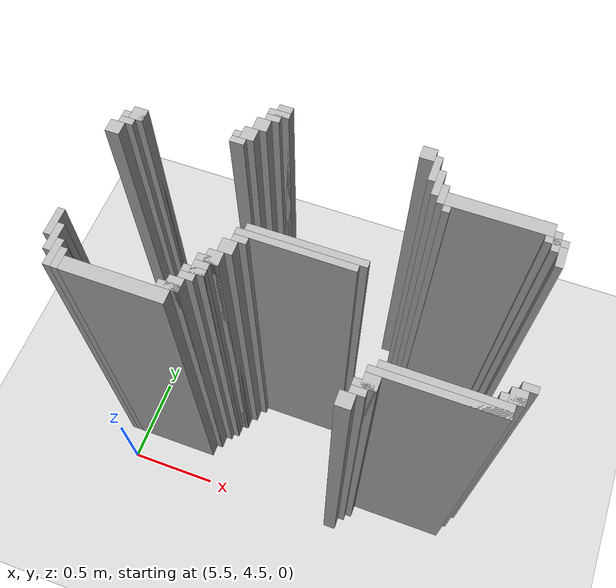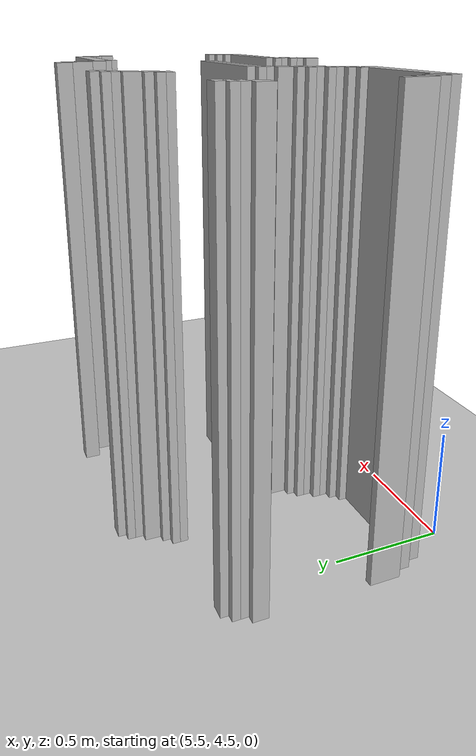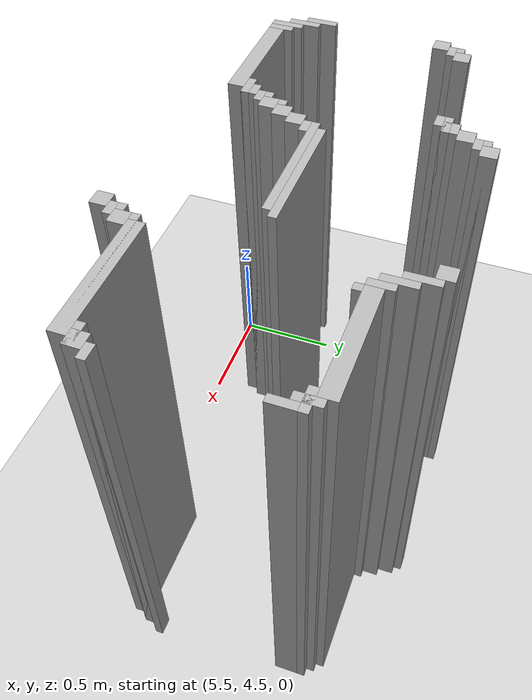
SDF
<sdf version="1.6">
 <world name="slam_world">
  <model name="ground_plane">
   <static>true</static>
   <link name="link">
    <collision name="collision">
     <geometry><plane><normal>0 0 1</normal><size>100 100</size></plane></geometry>
    </collision>
    <visual name="visual">
     <geometry><plane><normal>0 0 1</normal><size>100 100</size></plane></geometry>
     <material>
      <ambient>0.8 0.8 0.8 1</ambient>
      <diffuse>0.8 0.8 0.8 1</diffuse>
      <specular>0.8 0.8 0.8 1</specular>
     </material>
    </visual>
   </link>
  </model>
  <model name="wall_3876">
   <static>true</static>
   <pose>6.05568445475638 5.7772621809744775 1.0 0 0 0</pose>
   <link name="link">
    <collision name="collision">
     <geometry><box><size>0.06960556844547564 0.06960556844547564 2.0</size></box></geometry>
    </collision>
    <visual name="visual">
     <geometry><box><size>0.06960556844547564 0.06960556844547564 2.0</size></box></geometry>
     <material><ambient>0.5 0.5 0.5 1</ambient><diffuse>0.7 0.7 0.7 1</diffuse></material>
    </visual>
   </link>
  </model>
  <model name="wall_3877">
   <static>true</static>
   <pose>6.751740139211137 5.7772621809744775 1.0 0 0 0</pose>
   <link name="link">
    <collision name="collision">
     <geometry><box><size>0.06960556844547564 0.06960556844547564 2.0</size></box></geometry>
    </collision>
    <visual name="visual">
     <geometry><box><size>0.06960556844547564 0.06960556844547564 2.0</size></box></geometry>
     <material><ambient>0.5 0.5 0.5 1</ambient><diffuse>0.7 0.7 0.7 1</diffuse></material>
    </visual>
   </link>
  </model>
  <model name="wall_3889">
   <static>true</static>
   <pose>6.038283062645012 5.759860788863109 1.0 0 0 0</pose>
   <link name="link">
    <collision name="collision">
     <geometry><box><size>0.10440835266821345 0.03480278422273782 2.0</size></box></geometry>
    </collision>
    <visual name="visual">
     <geometry><box><size>0.10440835266821345 0.03480278422273782 2.0</size></box></geometry>
     <material><ambient>0.5 0.5 0.5 1</ambient><diffuse>0.7 0.7 0.7 1</diffuse></material>
    </visual>
   </link>
  </model>
  <model name="wall_3890">
   <static>true</static>
   <pose>6.803944315545244 5.707656612529002 1.0 0 0 0</pose>
   <link name="link">
    <collision name="collision">
     <geometry><box><size>0.03480278422273782 0.13921113689095127 2.0</size></box></geometry>
    </collision>
    <visual name="visual">
     <geometry><box><size>0.03480278422273782 0.13921113689095127 2.0</size></box></geometry>
     <material><ambient>0.5 0.5 0.5 1</ambient><diffuse>0.7 0.7 0.7 1</diffuse></material>
    </visual>
   </link>
  </model>
  <model name="wall_3902">
   <static>true</static>
   <pose>6.020881670533642 5.725058004640371 1.0 0 0 0</pose>
   <link name="link">
    <collision name="collision">
     <geometry><box><size>0.06960556844547564 0.03480278422273782 2.0</size></box></geometry>
    </collision>
    <visual name="visual">
     <geometry><box><size>0.06960556844547564 0.03480278422273782 2.0</size></box></geometry>
     <material><ambient>0.5 0.5 0.5 1</ambient><diffuse>0.7 0.7 0.7 1</diffuse></material>
    </visual>
   </link>
  </model>
  <model name="wall_3913">
   <static>true</static>
   <pose>5.986078886310905 5.672853828306264 1.0 0 0 0</pose>
   <link name="link">
    <collision name="collision">
     <geometry><box><size>0.06960556844547564 0.06960556844547564 2.0</size></box></geometry>
    </collision>
    <visual name="visual">
     <geometry><box><size>0.06960556844547564 0.06960556844547564 2.0</size></box></geometry>
     <material><ambient>0.5 0.5 0.5 1</ambient><diffuse>0.7 0.7 0.7 1</diffuse></material>
    </visual>
   </link>
  </model>
  <model name="wall_3914">
   <static>true</static>
   <pose>6.838747099767981 5.638051044083526 1.0 0 0 0</pose>
   <link name="link">
    <collision name="collision">
     <geometry><box><size>0.03480278422273782 0.13921113689095127 2.0</size></box></geometry>
    </collision>
    <visual name="visual">
     <geometry><box><size>0.03480278422273782 0.13921113689095127 2.0</size></box></geometry>
     <material><ambient>0.5 0.5 0.5 1</ambient><diffuse>0.7 0.7 0.7 1</diffuse></material>
    </visual>
   </link>
  </model>
  <model name="wall_3929">
   <static>true</static>
   <pose>5.951276102088166 5.603248259860789 1.0 0 0 0</pose>
   <link name="link">
    <collision name="collision">
     <geometry><box><size>0.06960556844547564 0.06960556844547564 2.0</size></box></geometry>
    </collision>
    <visual name="visual">
     <geometry><box><size>0.06960556844547564 0.06960556844547564 2.0</size></box></geometry>
     <material><ambient>0.5 0.5 0.5 1</ambient><diffuse>0.7 0.7 0.7 1</diffuse></material>
    </visual>
   </link>
  </model>
  <model name="wall_3930">
   <static>true</static>
   <pose>6.8735498839907185 5.58584686774942 1.0 0 0 0</pose>
   <link name="link">
    <collision name="collision">
     <geometry><box><size>0.03480278422273782 0.10440835266821345 2.0</size></box></geometry>
    </collision>
    <visual name="visual">
     <geometry><box><size>0.03480278422273782 0.10440835266821345 2.0</size></box></geometry>
     <material><ambient>0.5 0.5 0.5 1</ambient><diffuse>0.7 0.7 0.7 1</diffuse></material>
    </visual>
   </link>
  </model>
  <model name="wall_3945">
   <static>true</static>
   <pose>5.933874709976798 5.58584686774942 1.0 0 0 0</pose>
   <link name="link">
    <collision name="collision">
     <geometry><box><size>0.10440835266821345 0.03480278422273782 2.0</size></box></geometry>
    </collision>
    <visual name="visual">
     <geometry><box><size>0.10440835266821345 0.03480278422273782 2.0</size></box></geometry>
     <material><ambient>0.5 0.5 0.5 1</ambient><diffuse>0.7 0.7 0.7 1</diffuse></material>
    </visual>
   </link>
  </model>
  <model name="wall_3946">
   <static>true</static>
   <pose>7.134570765661253 5.56844547563805 1.0 0 0 0</pose>
   <link name="link">
    <collision name="collision">
     <geometry><box><size>0.4872389791183295 0.06960556844547564 2.0</size></box></geometry>
    </collision>
    <visual name="visual">
     <geometry><box><size>0.4872389791183295 0.06960556844547564 2.0</size></box></geometry>
     <material><ambient>0.5 0.5 0.5 1</ambient><diffuse>0.7 0.7 0.7 1</diffuse></material>
    </visual>
   </link>
  </model>
  <model name="wall_3959">
   <static>true</static>
   <pose>5.4292343387471 5.533642691415313 1.0 0 0 0</pose>
   <link name="link">
    <collision name="collision">
     <geometry><box><size>0.06960556844547564 0.06960556844547564 2.0</size></box></geometry>
    </collision>
    <visual name="visual">
     <geometry><box><size>0.06960556844547564 0.06960556844547564 2.0</size></box></geometry>
     <material><ambient>0.5 0.5 0.5 1</ambient><diffuse>0.7 0.7 0.7 1</diffuse></material>
    </visual>
   </link>
  </model>
  <model name="wall_3960">
   <static>true</static>
   <pose>5.916473317865429 5.551044083526682 1.0 0 0 0</pose>
   <link name="link">
    <collision name="collision">
     <geometry><box><size>0.06960556844547564 0.03480278422273782 2.0</size></box></geometry>
    </collision>
    <visual name="visual">
     <geometry><box><size>0.06960556844547564 0.03480278422273782 2.0</size></box></geometry>
     <material><ambient>0.5 0.5 0.5 1</ambient><diffuse>0.7 0.7 0.7 1</diffuse></material>
    </visual>
   </link>
  </model>
  <model name="wall_3961">
   <static>true</static>
   <pose>7.395591647331786 5.516241299303944 1.0 0 0 0</pose>
   <link name="link">
    <collision name="collision">
     <geometry><box><size>0.03480278422273782 0.10440835266821345 2.0</size></box></geometry>
    </collision>
    <visual name="visual">
     <geometry><box><size>0.03480278422273782 0.10440835266821345 2.0</size></box></geometry>
     <material><ambient>0.5 0.5 0.5 1</ambient><diffuse>0.7 0.7 0.7 1</diffuse></material>
    </visual>
   </link>
  </model>
  <model name="wall_3973">
   <static>true</static>
   <pose>5.41183294663573 5.516241299303944 1.0 0 0 0</pose>
   <link name="link">
    <collision name="collision">
     <geometry><box><size>0.10440835266821345 0.03480278422273782 2.0</size></box></geometry>
    </collision>
    <visual name="visual">
     <geometry><box><size>0.10440835266821345 0.03480278422273782 2.0</size></box></geometry>
     <material><ambient>0.5 0.5 0.5 1</ambient><diffuse>0.7 0.7 0.7 1</diffuse></material>
    </visual>
   </link>
  </model>
  <model name="wall_3974">
   <static>true</static>
   <pose>6.908352668213457 5.516241299303944 1.0 0 0 0</pose>
   <link name="link">
    <collision name="collision">
     <geometry><box><size>0.03480278422273782 0.03480278422273782 2.0</size></box></geometry>
    </collision>
    <visual name="visual">
     <geometry><box><size>0.03480278422273782 0.03480278422273782 2.0</size></box></geometry>
     <material><ambient>0.5 0.5 0.5 1</ambient><diffuse>0.7 0.7 0.7 1</diffuse></material>
    </visual>
   </link>
  </model>
  <model name="wall_3975">
   <static>true</static>
   <pose>7.395591647331786 5.516241299303944 1.0 0 0 0</pose>
   <link name="link">
    <collision name="collision">
     <geometry><box><size>0.10440835266821345 0.03480278422273782 2.0</size></box></geometry>
    </collision>
    <visual name="visual">
     <geometry><box><size>0.10440835266821345 0.03480278422273782 2.0</size></box></geometry>
     <material><ambient>0.5 0.5 0.5 1</ambient><diffuse>0.7 0.7 0.7 1</diffuse></material>
    </visual>
   </link>
  </model>
  <model name="wall_3989">
   <static>true</static>
   <pose>5.3944315545243615 5.481438515081206 1.0 0 0 0</pose>
   <link name="link">
    <collision name="collision">
     <geometry><box><size>0.06960556844547564 0.03480278422273782 2.0</size></box></geometry>
    </collision>
    <visual name="visual">
     <geometry><box><size>0.06960556844547564 0.03480278422273782 2.0</size></box></geometry>
     <material><ambient>0.5 0.5 0.5 1</ambient><diffuse>0.7 0.7 0.7 1</diffuse></material>
    </visual>
   </link>
  </model>
  <model name="wall_3990">
   <static>true</static>
   <pose>7.430394431554524 5.4466357308584685 1.0 0 0 0</pose>
   <link name="link">
    <collision name="collision">
     <geometry><box><size>0.03480278422273782 0.10440835266821345 2.0</size></box></geometry>
    </collision>
    <visual name="visual">
     <geometry><box><size>0.03480278422273782 0.10440835266821345 2.0</size></box></geometry>
     <material><ambient>0.5 0.5 0.5 1</ambient><diffuse>0.7 0.7 0.7 1</diffuse></material>
    </visual>
   </link>
  </model>
  <model name="wall_4002">
   <static>true</static>
   <pose>5.359628770301624 5.4292343387471 1.0 0 0 0</pose>
   <link name="link">
    <collision name="collision">
     <geometry><box><size>0.06960556844547564 0.06960556844547564 2.0</size></box></geometry>
    </collision>
    <visual name="visual">
     <geometry><box><size>0.06960556844547564 0.06960556844547564 2.0</size></box></geometry>
     <material><ambient>0.5 0.5 0.5 1</ambient><diffuse>0.7 0.7 0.7 1</diffuse></material>
    </visual>
   </link>
  </model>
  <model name="wall_4092">
   <static>true</static>
   <pose>6.403712296983758 5.133410672853828 1.0 0 0 0</pose>
   <link name="link">
    <collision name="collision">
     <geometry><box><size>0.5568445475638051 0.03480278422273782 2.0</size></box></geometry>
    </collision>
    <visual name="visual">
     <geometry><box><size>0.5568445475638051 0.03480278422273782 2.0</size></box></geometry>
     <material><ambient>0.5 0.5 0.5 1</ambient><diffuse>0.7 0.7 0.7 1</diffuse></material>
    </visual>
   </link>
  </model>
  <model name="wall_4102">
   <static>true</static>
   <pose>6.368909512761021 5.09860788863109 1.0 0 0 0</pose>
   <link name="link">
    <collision name="collision">
     <geometry><box><size>0.5568445475638051 0.03480278422273782 2.0</size></box></geometry>
    </collision>
    <visual name="visual">
     <geometry><box><size>0.5568445475638051 0.03480278422273782 2.0</size></box></geometry>
     <material><ambient>0.5 0.5 0.5 1</ambient><diffuse>0.7 0.7 0.7 1</diffuse></material>
    </visual>
   </link>
  </model>
  <model name="wall_4116">
   <static>true</static>
   <pose>6.125290023201856 5.0638051044083525 1.0 0 0 0</pose>
   <link name="link">
    <collision name="collision">
     <geometry><box><size>0.06960556844547564 0.03480278422273782 2.0</size></box></geometry>
    </collision>
    <visual name="visual">
     <geometry><box><size>0.06960556844547564 0.03480278422273782 2.0</size></box></geometry>
     <material><ambient>0.5 0.5 0.5 1</ambient><diffuse>0.7 0.7 0.7 1</diffuse></material>
    </visual>
   </link>
  </model>
  <model name="wall_4131">
   <static>true</static>
   <pose>6.090487238979118 5.0116009280742455 1.0 0 0 0</pose>
   <link name="link">
    <collision name="collision">
     <geometry><box><size>0.06960556844547564 0.06960556844547564 2.0</size></box></geometry>
    </collision>
    <visual name="visual">
     <geometry><box><size>0.06960556844547564 0.06960556844547564 2.0</size></box></geometry>
     <material><ambient>0.5 0.5 0.5 1</ambient><diffuse>0.7 0.7 0.7 1</diffuse></material>
    </visual>
   </link>
  </model>
  <model name="wall_4146">
   <static>true</static>
   <pose>6.05568445475638 4.94199535962877 1.0 0 0 0</pose>
   <link name="link">
    <collision name="collision">
     <geometry><box><size>0.06960556844547564 0.06960556844547564 2.0</size></box></geometry>
    </collision>
    <visual name="visual">
     <geometry><box><size>0.06960556844547564 0.06960556844547564 2.0</size></box></geometry>
     <material><ambient>0.5 0.5 0.5 1</ambient><diffuse>0.7 0.7 0.7 1</diffuse></material>
    </visual>
   </link>
  </model>
  <model name="wall_4160">
   <static>true</static>
   <pose>5.342227378190255 4.872389791183294 1.0 0 0 0</pose>
   <link name="link">
    <collision name="collision">
     <geometry><box><size>0.03480278422273782 0.13921113689095127 2.0</size></box></geometry>
    </collision>
    <visual name="visual">
     <geometry><box><size>0.03480278422273782 0.13921113689095127 2.0</size></box></geometry>
     <material><ambient>0.5 0.5 0.5 1</ambient><diffuse>0.7 0.7 0.7 1</diffuse></material>
    </visual>
   </link>
  </model>
  <model name="wall_4161">
   <static>true</static>
   <pose>6.038283062645012 4.924593967517401 1.0 0 0 0</pose>
   <link name="link">
    <collision name="collision">
     <geometry><box><size>0.10440835266821345 0.03480278422273782 2.0</size></box></geometry>
    </collision>
    <visual name="visual">
     <geometry><box><size>0.10440835266821345 0.03480278422273782 2.0</size></box></geometry>
     <material><ambient>0.5 0.5 0.5 1</ambient><diffuse>0.7 0.7 0.7 1</diffuse></material>
    </visual>
   </link>
  </model>
  <model name="wall_4174">
   <static>true</static>
   <pose>6.020881670533642 4.872389791183294 1.0 0 0 0</pose>
   <link name="link">
    <collision name="collision">
     <geometry><box><size>0.06960556844547564 0.06960556844547564 2.0</size></box></geometry>
    </collision>
    <visual name="visual">
     <geometry><box><size>0.06960556844547564 0.06960556844547564 2.0</size></box></geometry>
     <material><ambient>0.5 0.5 0.5 1</ambient><diffuse>0.7 0.7 0.7 1</diffuse></material>
    </visual>
   </link>
  </model>
  <model name="wall_4185">
   <static>true</static>
   <pose>5.377030162412993 4.802784222737819 1.0 0 0 0</pose>
   <link name="link">
    <collision name="collision">
     <geometry><box><size>0.03480278422273782 0.13921113689095127 2.0</size></box></geometry>
    </collision>
    <visual name="visual">
     <geometry><box><size>0.03480278422273782 0.13921113689095127 2.0</size></box></geometry>
     <material><ambient>0.5 0.5 0.5 1</ambient><diffuse>0.7 0.7 0.7 1</diffuse></material>
    </visual>
   </link>
  </model>
  <model name="wall_4186">
   <static>true</static>
   <pose>6.003480278422273 4.854988399071925 1.0 0 0 0</pose>
   <link name="link">
    <collision name="collision">
     <geometry><box><size>0.10440835266821345 0.03480278422273782 2.0</size></box></geometry>
    </collision>
    <visual name="visual">
     <geometry><box><size>0.10440835266821345 0.03480278422273782 2.0</size></box></geometry>
     <material><ambient>0.5 0.5 0.5 1</ambient><diffuse>0.7 0.7 0.7 1</diffuse></material>
    </visual>
   </link>
  </model>
  <model name="wall_4197">
   <static>true</static>
   <pose>5.986078886310905 4.820185614849188 1.0 0 0 0</pose>
   <link name="link">
    <collision name="collision">
     <geometry><box><size>0.06960556844547564 0.03480278422273782 2.0</size></box></geometry>
    </collision>
    <visual name="visual">
     <geometry><box><size>0.06960556844547564 0.03480278422273782 2.0</size></box></geometry>
     <material><ambient>0.5 0.5 0.5 1</ambient><diffuse>0.7 0.7 0.7 1</diffuse></material>
    </visual>
   </link>
  </model>
  <model name="wall_4198">
   <static>true</static>
   <pose>7.447795823665893 4.820185614849188 1.0 0 0 0</pose>
   <link name="link">
    <collision name="collision">
     <geometry><box><size>0.06960556844547564 0.03480278422273782 2.0</size></box></geometry>
    </collision>
    <visual name="visual">
     <geometry><box><size>0.06960556844547564 0.03480278422273782 2.0</size></box></geometry>
     <material><ambient>0.5 0.5 0.5 1</ambient><diffuse>0.7 0.7 0.7 1</diffuse></material>
    </visual>
   </link>
  </model>
  <model name="wall_4207">
   <static>true</static>
   <pose>5.41183294663573 4.7331786542923435 1.0 0 0 0</pose>
   <link name="link">
    <collision name="collision">
     <geometry><box><size>0.03480278422273782 0.13921113689095127 2.0</size></box></geometry>
    </collision>
    <visual name="visual">
     <geometry><box><size>0.03480278422273782 0.13921113689095127 2.0</size></box></geometry>
     <material><ambient>0.5 0.5 0.5 1</ambient><diffuse>0.7 0.7 0.7 1</diffuse></material>
    </visual>
   </link>
  </model>
  <model name="wall_4208">
   <static>true</static>
   <pose>5.951276102088166 4.767981438515081 1.0 0 0 0</pose>
   <link name="link">
    <collision name="collision">
     <geometry><box><size>0.06960556844547564 0.06960556844547564 2.0</size></box></geometry>
    </collision>
    <visual name="visual">
     <geometry><box><size>0.06960556844547564 0.06960556844547564 2.0</size></box></geometry>
     <material><ambient>0.5 0.5 0.5 1</ambient><diffuse>0.7 0.7 0.7 1</diffuse></material>
    </visual>
   </link>
  </model>
  <model name="wall_4209">
   <static>true</static>
   <pose>7.412993039443156 4.767981438515081 1.0 0 0 0</pose>
   <link name="link">
    <collision name="collision">
     <geometry><box><size>0.06960556844547564 0.06960556844547564 2.0</size></box></geometry>
    </collision>
    <visual name="visual">
     <geometry><box><size>0.06960556844547564 0.06960556844547564 2.0</size></box></geometry>
     <material><ambient>0.5 0.5 0.5 1</ambient><diffuse>0.7 0.7 0.7 1</diffuse></material>
    </visual>
   </link>
  </model>
  <model name="wall_4221">
   <static>true</static>
   <pose>5.4466357308584685 4.715777262180974 1.0 0 0 0</pose>
   <link name="link">
    <collision name="collision">
     <geometry><box><size>0.03480278422273782 0.10440835266821345 2.0</size></box></geometry>
    </collision>
    <visual name="visual">
     <geometry><box><size>0.03480278422273782 0.10440835266821345 2.0</size></box></geometry>
     <material><ambient>0.5 0.5 0.5 1</ambient><diffuse>0.7 0.7 0.7 1</diffuse></material>
    </visual>
   </link>
  </model>
  <model name="wall_4222">
   <static>true</static>
   <pose>5.933874709976798 4.750580046403712 1.0 0 0 0</pose>
   <link name="link">
    <collision name="collision">
     <geometry><box><size>0.10440835266821345 0.03480278422273782 2.0</size></box></geometry>
    </collision>
    <visual name="visual">
     <geometry><box><size>0.10440835266821345 0.03480278422273782 2.0</size></box></geometry>
     <material><ambient>0.5 0.5 0.5 1</ambient><diffuse>0.7 0.7 0.7 1</diffuse></material>
    </visual>
   </link>
  </model>
  <model name="wall_4223">
   <static>true</static>
   <pose>7.395591647331786 4.750580046403712 1.0 0 0 0</pose>
   <link name="link">
    <collision name="collision">
     <geometry><box><size>0.10440835266821345 0.03480278422273782 2.0</size></box></geometry>
    </collision>
    <visual name="visual">
     <geometry><box><size>0.10440835266821345 0.03480278422273782 2.0</size></box></geometry>
     <material><ambient>0.5 0.5 0.5 1</ambient><diffuse>0.7 0.7 0.7 1</diffuse></material>
    </visual>
   </link>
  </model>
  <model name="wall_4236">
   <static>true</static>
   <pose>5.707656612529002 4.698375870069605 1.0 0 0 0</pose>
   <link name="link">
    <collision name="collision">
     <geometry><box><size>0.4872389791183295 0.06960556844547564 2.0</size></box></geometry>
    </collision>
    <visual name="visual">
     <geometry><box><size>0.4872389791183295 0.06960556844547564 2.0</size></box></geometry>
     <material><ambient>0.5 0.5 0.5 1</ambient><diffuse>0.7 0.7 0.7 1</diffuse></material>
    </visual>
   </link>
  </model>
  <model name="wall_4237">
   <static>true</static>
   <pose>7.134570765661253 4.698375870069605 1.0 0 0 0</pose>
   <link name="link">
    <collision name="collision">
     <geometry><box><size>0.5568445475638051 0.06960556844547564 2.0</size></box></geometry>
    </collision>
    <visual name="visual">
     <geometry><box><size>0.5568445475638051 0.06960556844547564 2.0</size></box></geometry>
     <material><ambient>0.5 0.5 0.5 1</ambient><diffuse>0.7 0.7 0.7 1</diffuse></material>
    </visual>
   </link>
  </model>
  <model name="wall_4247">
   <static>true</static>
   <pose>7.117169373549884 4.6809744779582365 1.0 0 0 0</pose>
   <link name="link">
    <collision name="collision">
     <geometry><box><size>0.5916473317865429 0.03480278422273782 2.0</size></box></geometry>
    </collision>
    <visual name="visual">
     <geometry><box><size>0.5916473317865429 0.03480278422273782 2.0</size></box></geometry>
     <material><ambient>0.5 0.5 0.5 1</ambient><diffuse>0.7 0.7 0.7 1</diffuse></material>
    </visual>
   </link>
  </model>
  <model name="wall_4258">
   <static>true</static>
   <pose>6.85614849187935 4.6287703016241295 1.0 0 0 0</pose>
   <link name="link">
    <collision name="collision">
     <geometry><box><size>0.06960556844547564 0.06960556844547564 2.0</size></box></geometry>
    </collision>
    <visual name="visual">
     <geometry><box><size>0.06960556844547564 0.06960556844547564 2.0</size></box></geometry>
     <material><ambient>0.5 0.5 0.5 1</ambient><diffuse>0.7 0.7 0.7 1</diffuse></material>
    </visual>
   </link>
  </model>
  <model name="wall_4269">
   <static>true</static>
   <pose>6.838747099767981 4.611368909512761 1.0 0 0 0</pose>
   <link name="link">
    <collision name="collision">
     <geometry><box><size>0.10440835266821345 0.03480278422273782 2.0</size></box></geometry>
    </collision>
    <visual name="visual">
     <geometry><box><size>0.10440835266821345 0.03480278422273782 2.0</size></box></geometry>
     <material><ambient>0.5 0.5 0.5 1</ambient><diffuse>0.7 0.7 0.7 1</diffuse></material>
    </visual>
   </link>
  </model>
  <model name="wall_4278">
   <static>true</static>
   <pose>6.821345707656612 4.576566125290023 1.0 0 0 0</pose>
   <link name="link">
    <collision name="collision">
     <geometry><box><size>0.06960556844547564 0.03480278422273782 2.0</size></box></geometry>
    </collision>
    <visual name="visual">
     <geometry><box><size>0.06960556844547564 0.03480278422273782 2.0</size></box></geometry>
     <material><ambient>0.5 0.5 0.5 1</ambient><diffuse>0.7 0.7 0.7 1</diffuse></material>
    </visual>
   </link>
  </model>
  <model name="wall_4285">
   <static>true</static>
   <pose>6.786542923433874 4.524361948955916 1.0 0 0 0</pose>
   <link name="link">
    <collision name="collision">
     <geometry><box><size>0.06960556844547564 0.06960556844547564 2.0</size></box></geometry>
    </collision>
    <visual name="visual">
     <geometry><box><size>0.06960556844547564 0.06960556844547564 2.0</size></box></geometry>
     <material><ambient>0.5 0.5 0.5 1</ambient><diffuse>0.7 0.7 0.7 1</diffuse></material>
    </visual>
   </link>
  </model>
 </world>
</sdf>
